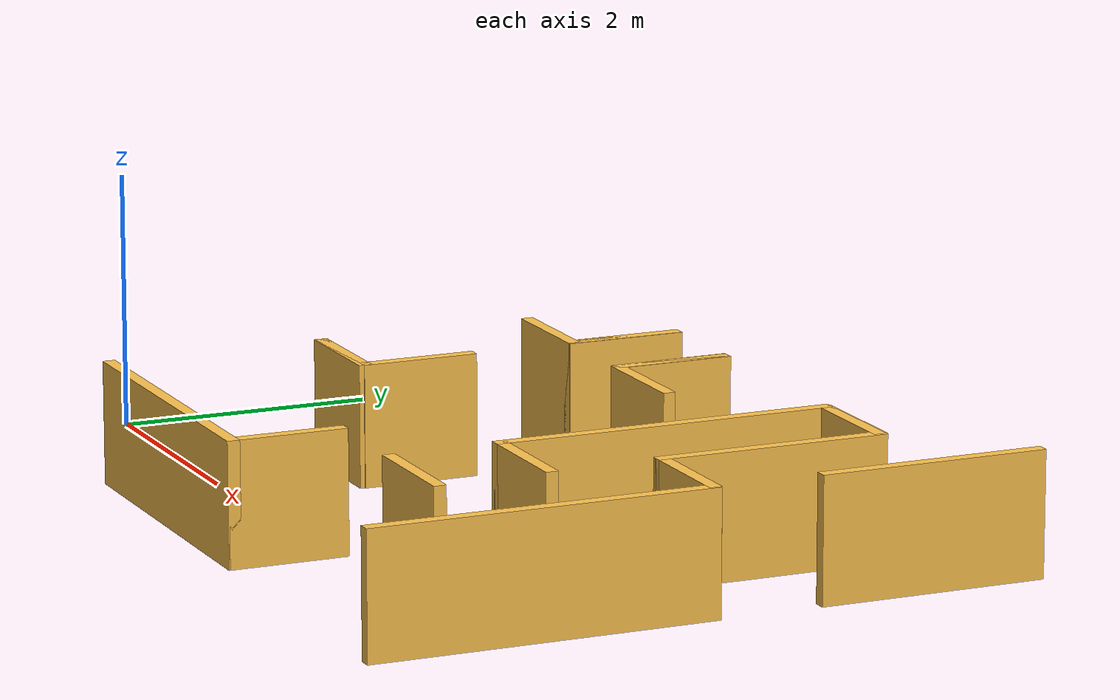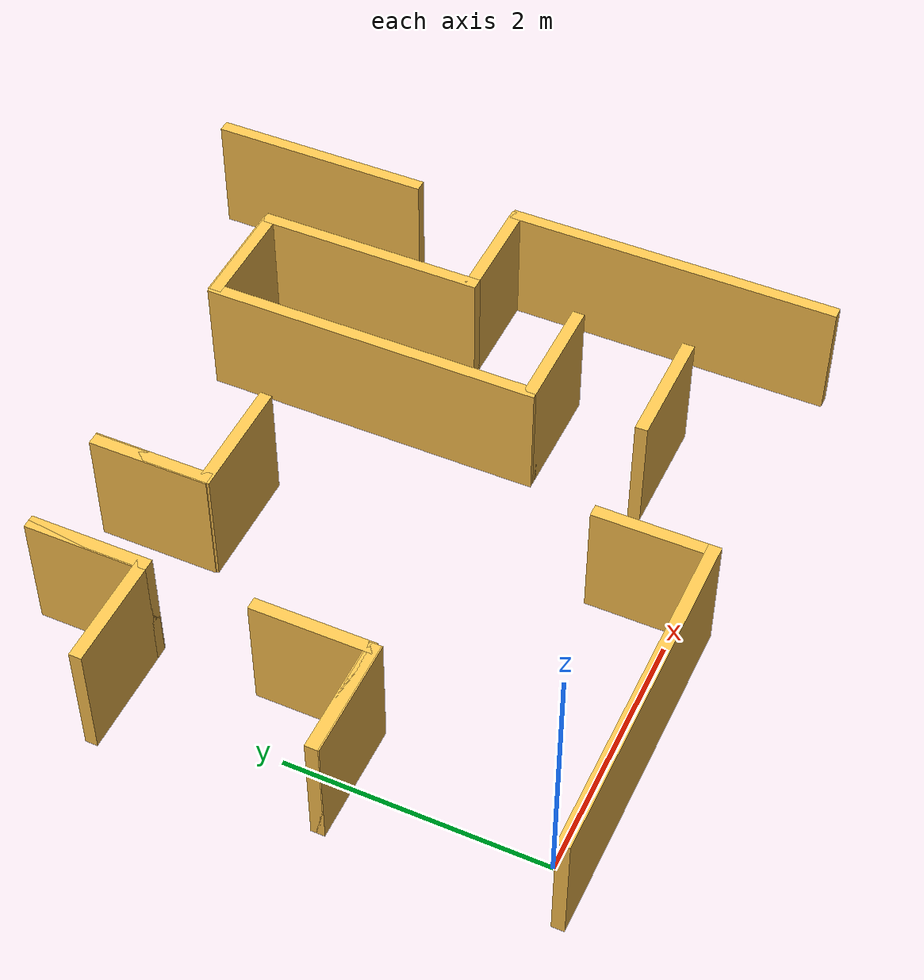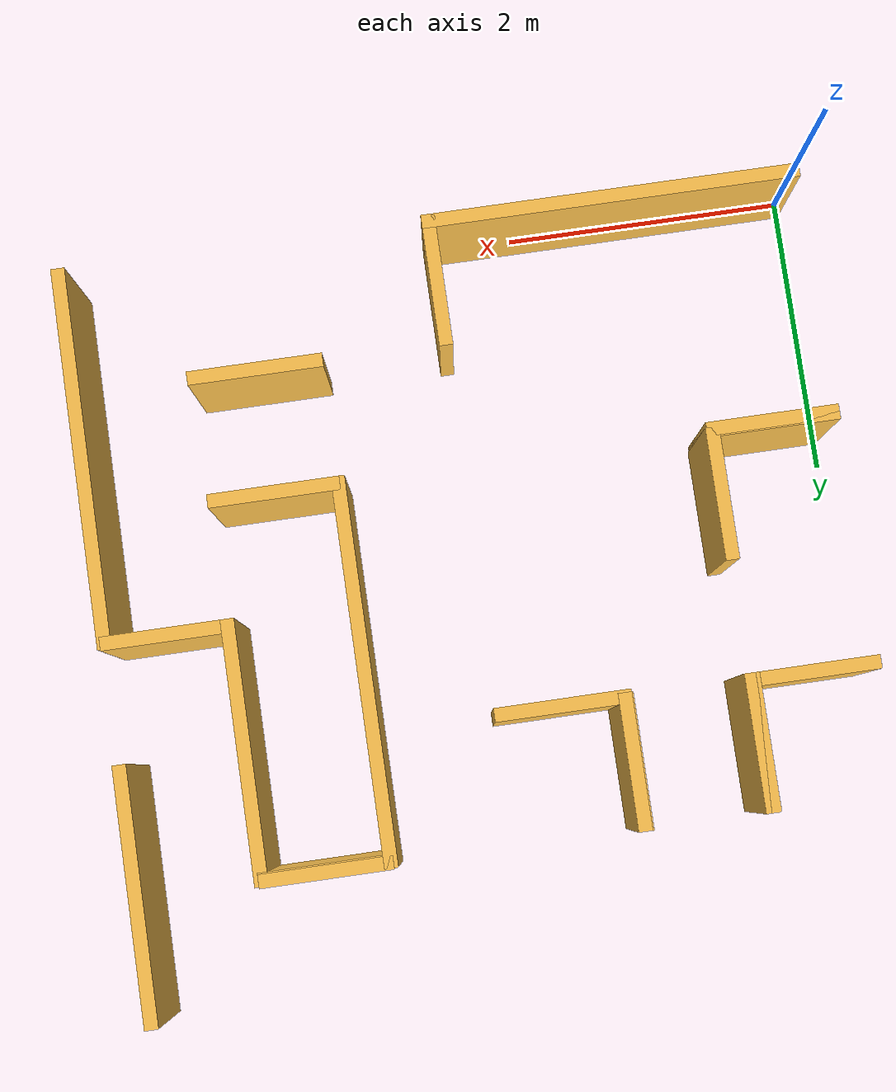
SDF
<sdf version="1.5">
 <model name="maze_test">
  <link name="Wall_19">
   <visual name="Wall_19_Visual">
    <pose>0.8 3.945 0 0 0 0</pose>
    <geometry><box><size>0.1 0.9900000000000001 1</size></box></geometry>
    <material>
     <script><uri>file://media/materials/scripts/gazebo.material</uri><name>Gazebo/Grey</name></script>
     <ambient>1 0.764706 0.305882 1</ambient>
     <diffuse>0.7 0.7 0.7 1</diffuse>
     <specular>0.01 0.01 0.01 1</specular>
     <emissive>0 0 0 1</emissive>
     <shader type="pixel"/>
    </material>
   </visual>
   <collision name="Wall_19_Collision">
    <pose>0.8 3.945 0 0 0 0</pose>
    <geometry><box><size>0.1 0.9900000000000001 1</size></box></geometry>
    <surface>
     <friction><ode><mu>1</mu><mu2>1</mu2><fdir1>0 0 0</fdir1><slip1>0</slip1><slip2>0</slip2></ode></friction>
     <bounce><restitution_coefficient>0</restitution_coefficient><threshold>1e+06</threshold></bounce>
     <contact>
      <collide_without_contact>0</collide_without_contact>
      <collide_without_contact_bitmask>1</collide_without_contact_bitmask>
      <collide_bitmask>1</collide_bitmask>
      <ode>
       <soft_cfm>0</soft_cfm>
       <soft_erp>0.2</soft_erp>
       <kp>1e+13</kp>
       <kd>1</kd>
       <max_vel>0.01</max_vel>
       <min_depth>0</min_depth>
      </ode>
      <bullet>
       <split_impulse>1</split_impulse>
       <split_impulse_penetration_threshold>-0.01</split_impulse_penetration_threshold>
       <soft_cfm>0</soft_cfm>
       <soft_erp>0.2</soft_erp>
       <kp>1e+13</kp>
       <kd>1</kd>
      </bullet>
     </contact>
    </surface>
   </collision>
  </link>
  <link name="Wall_20">
   <visual name="Wall_20_Visual">
    <pose>4.4 3.4949999999999997 0 0 0 0</pose>
    <geometry><box><size>0.1 1.8900000000000001 1</size></box></geometry>
    <material>
     <script><uri>file://media/materials/scripts/gazebo.material</uri><name>Gazebo/Grey</name></script>
     <ambient>1 0.764706 0.305882 1</ambient>
     <diffuse>0.7 0.7 0.7 1</diffuse>
     <specular>0.01 0.01 0.01 1</specular>
     <emissive>0 0 0 1</emissive>
     <shader type="pixel"/>
    </material>
   </visual>
   <collision name="Wall_20_Collision">
    <pose>4.4 3.4949999999999997 0 0 0 0</pose>
    <geometry><box><size>0.1 1.8900000000000001 1</size></box></geometry>
    <surface>
     <friction><ode><mu>1</mu><mu2>1</mu2><fdir1>0 0 0</fdir1><slip1>0</slip1><slip2>0</slip2></ode></friction>
     <bounce><restitution_coefficient>0</restitution_coefficient><threshold>1e+06</threshold></bounce>
     <contact>
      <collide_without_contact>0</collide_without_contact>
      <collide_without_contact_bitmask>1</collide_without_contact_bitmask>
      <collide_bitmask>1</collide_bitmask>
      <ode>
       <soft_cfm>0</soft_cfm>
       <soft_erp>0.2</soft_erp>
       <kp>1e+13</kp>
       <kd>1</kd>
       <max_vel>0.01</max_vel>
       <min_depth>0</min_depth>
      </ode>
      <bullet>
       <split_impulse>1</split_impulse>
       <split_impulse_penetration_threshold>-0.01</split_impulse_penetration_threshold>
       <soft_cfm>0</soft_cfm>
       <soft_erp>0.2</soft_erp>
       <kp>1e+13</kp>
       <kd>1</kd>
      </bullet>
     </contact>
    </surface>
   </collision>
  </link>
  <link name="Wall_21">
   <visual name="Wall_21_Visual">
    <pose>2.14 3.4899999999999998 0 0 0 0</pose>
    <geometry><box><size>0.9799999999999999 0.1 1</size></box></geometry>
    <material>
     <script><uri>file://media/materials/scripts/gazebo.material</uri><name>Gazebo/Grey</name></script>
     <ambient>1 0.764706 0.305882 1</ambient>
     <diffuse>0.7 0.7 0.7 1</diffuse>
     <specular>0.01 0.01 0.01 1</specular>
     <emissive>0 0 0 1</emissive>
     <shader type="pixel"/>
    </material>
   </visual>
   <collision name="Wall_21_Collision">
    <pose>2.14 3.4899999999999998 0 0 0 0</pose>
    <geometry><box><size>0.9799999999999999 0.1 1</size></box></geometry>
    <surface>
     <friction><ode><mu>1</mu><mu2>1</mu2><fdir1>0 0 0</fdir1><slip1>0</slip1><slip2>0</slip2></ode></friction>
     <bounce><restitution_coefficient>0</restitution_coefficient><threshold>1e+06</threshold></bounce>
     <contact>
      <collide_without_contact>0</collide_without_contact>
      <collide_without_contact_bitmask>1</collide_without_contact_bitmask>
      <collide_bitmask>1</collide_bitmask>
      <ode>
       <soft_cfm>0</soft_cfm>
       <soft_erp>0.2</soft_erp>
       <kp>1e+13</kp>
       <kd>1</kd>
       <max_vel>0.01</max_vel>
       <min_depth>0</min_depth>
      </ode>
      <bullet>
       <split_impulse>1</split_impulse>
       <split_impulse_penetration_threshold>-0.01</split_impulse_penetration_threshold>
       <soft_cfm>0</soft_cfm>
       <soft_erp>0.2</soft_erp>
       <kp>1e+13</kp>
       <kd>1</kd>
      </bullet>
     </contact>
    </surface>
   </collision>
  </link>
  <link name="Wall_22">
   <visual name="Wall_22_Visual">
    <pose>0.79 3.945 0 0 0 0</pose>
    <geometry><box><size>0.1 0.9900000000000001 1</size></box></geometry>
    <material>
     <script><uri>file://media/materials/scripts/gazebo.material</uri><name>Gazebo/Grey</name></script>
     <ambient>1 0.764706 0.305882 1</ambient>
     <diffuse>0.7 0.7 0.7 1</diffuse>
     <specular>0.01 0.01 0.01 1</specular>
     <emissive>0 0 0 1</emissive>
     <shader type="pixel"/>
    </material>
   </visual>
   <collision name="Wall_22_Collision">
    <pose>0.79 3.945 0 0 0 0</pose>
    <geometry><box><size>0.1 0.9900000000000001 1</size></box></geometry>
    <surface>
     <friction><ode><mu>1</mu><mu2>1</mu2><fdir1>0 0 0</fdir1><slip1>0</slip1><slip2>0</slip2></ode></friction>
     <bounce><restitution_coefficient>0</restitution_coefficient><threshold>1e+06</threshold></bounce>
     <contact>
      <collide_without_contact>0</collide_without_contact>
      <collide_without_contact_bitmask>1</collide_without_contact_bitmask>
      <collide_bitmask>1</collide_bitmask>
      <ode>
       <soft_cfm>0</soft_cfm>
       <soft_erp>0.2</soft_erp>
       <kp>1e+13</kp>
       <kd>1</kd>
       <max_vel>0.01</max_vel>
       <min_depth>0</min_depth>
      </ode>
      <bullet>
       <split_impulse>1</split_impulse>
       <split_impulse_penetration_threshold>-0.01</split_impulse_penetration_threshold>
       <soft_cfm>0</soft_cfm>
       <soft_erp>0.2</soft_erp>
       <kp>1e+13</kp>
       <kd>1</kd>
      </bullet>
     </contact>
    </surface>
   </collision>
  </link>
  <link name="Wall_23">
   <visual name="Wall_23_Visual">
    <pose>0.35 3.5 0 0 0 0</pose>
    <geometry><box><size>0.94 0.1 1</size></box></geometry>
    <material>
     <script><uri>file://media/materials/scripts/gazebo.material</uri><name>Gazebo/Grey</name></script>
     <ambient>1 0.764706 0.305882 1</ambient>
     <diffuse>0.7 0.7 0.7 1</diffuse>
     <specular>0.01 0.01 0.01 1</specular>
     <emissive>0 0 0 1</emissive>
     <shader type="pixel"/>
    </material>
   </visual>
   <collision name="Wall_23_Collision">
    <pose>0.35 3.5 0 0 0 0</pose>
    <geometry><box><size>0.94 0.1 1</size></box></geometry>
    <surface>
     <friction><ode><mu>1</mu><mu2>1</mu2><fdir1>0 0 0</fdir1><slip1>0</slip1><slip2>0</slip2></ode></friction>
     <bounce><restitution_coefficient>0</restitution_coefficient><threshold>1e+06</threshold></bounce>
     <contact>
      <collide_without_contact>0</collide_without_contact>
      <collide_without_contact_bitmask>1</collide_without_contact_bitmask>
      <collide_bitmask>1</collide_bitmask>
      <ode>
       <soft_cfm>0</soft_cfm>
       <soft_erp>0.2</soft_erp>
       <kp>1e+13</kp>
       <kd>1</kd>
       <max_vel>0.01</max_vel>
       <min_depth>0</min_depth>
      </ode>
      <bullet>
       <split_impulse>1</split_impulse>
       <split_impulse_penetration_threshold>-0.01</split_impulse_penetration_threshold>
       <soft_cfm>0</soft_cfm>
       <soft_erp>0.2</soft_erp>
       <kp>1e+13</kp>
       <kd>1</kd>
      </bullet>
     </contact>
    </surface>
   </collision>
  </link>
  <link name="Wall_24">
   <visual name="Wall_24_Visual">
    <pose>3.4899999999999998 3.045 0 0 0 0</pose>
    <geometry><box><size>0.1 2.79 1</size></box></geometry>
    <material>
     <script><uri>file://media/materials/scripts/gazebo.material</uri><name>Gazebo/Grey</name></script>
     <ambient>1 0.764706 0.305882 1</ambient>
     <diffuse>0.7 0.7 0.7 1</diffuse>
     <specular>0.01 0.01 0.01 1</specular>
     <emissive>0 0 0 1</emissive>
     <shader type="pixel"/>
    </material>
   </visual>
   <collision name="Wall_24_Collision">
    <pose>3.4899999999999998 3.045 0 0 0 0</pose>
    <geometry><box><size>0.1 2.79 1</size></box></geometry>
    <surface>
     <friction><ode><mu>1</mu><mu2>1</mu2><fdir1>0 0 0</fdir1><slip1>0</slip1><slip2>0</slip2></ode></friction>
     <bounce><restitution_coefficient>0</restitution_coefficient><threshold>1e+06</threshold></bounce>
     <contact>
      <collide_without_contact>0</collide_without_contact>
      <collide_without_contact_bitmask>1</collide_without_contact_bitmask>
      <collide_bitmask>1</collide_bitmask>
      <ode>
       <soft_cfm>0</soft_cfm>
       <soft_erp>0.2</soft_erp>
       <kp>1e+13</kp>
       <kd>1</kd>
       <max_vel>0.01</max_vel>
       <min_depth>0</min_depth>
      </ode>
      <bullet>
       <split_impulse>1</split_impulse>
       <split_impulse_penetration_threshold>-0.01</split_impulse_penetration_threshold>
       <soft_cfm>0</soft_cfm>
       <soft_erp>0.2</soft_erp>
       <kp>1e+13</kp>
       <kd>1</kd>
      </bullet>
     </contact>
    </surface>
   </collision>
  </link>
  <link name="Wall_25">
   <visual name="Wall_25_Visual">
    <pose>2.59 0.33999999999999997 0 0 0 0</pose>
    <geometry><box><size>0.1 0.96 1</size></box></geometry>
    <material>
     <script><uri>file://media/materials/scripts/gazebo.material</uri><name>Gazebo/Grey</name></script>
     <ambient>1 0.764706 0.305882 1</ambient>
     <diffuse>0.7 0.7 0.7 1</diffuse>
     <specular>0.01 0.01 0.01 1</specular>
     <emissive>0 0 0 1</emissive>
     <shader type="pixel"/>
    </material>
   </visual>
   <collision name="Wall_25_Collision">
    <pose>2.59 0.33999999999999997 0 0 0 0</pose>
    <geometry><box><size>0.1 0.96 1</size></box></geometry>
    <surface>
     <friction><ode><mu>1</mu><mu2>1</mu2><fdir1>0 0 0</fdir1><slip1>0</slip1><slip2>0</slip2></ode></friction>
     <bounce><restitution_coefficient>0</restitution_coefficient><threshold>1e+06</threshold></bounce>
     <contact>
      <collide_without_contact>0</collide_without_contact>
      <collide_without_contact_bitmask>1</collide_without_contact_bitmask>
      <collide_bitmask>1</collide_bitmask>
      <ode>
       <soft_cfm>0</soft_cfm>
       <soft_erp>0.2</soft_erp>
       <kp>1e+13</kp>
       <kd>1</kd>
       <max_vel>0.01</max_vel>
       <min_depth>0</min_depth>
      </ode>
      <bullet>
       <split_impulse>1</split_impulse>
       <split_impulse_penetration_threshold>-0.01</split_impulse_penetration_threshold>
       <soft_cfm>0</soft_cfm>
       <soft_erp>0.2</soft_erp>
       <kp>1e+13</kp>
       <kd>1</kd>
      </bullet>
     </contact>
    </surface>
   </collision>
  </link>
  <link name="Wall_26">
   <visual name="Wall_26_Visual">
    <pose>0.36 1.7 0 0 0 0</pose>
    <geometry><box><size>0.96 0.1 1</size></box></geometry>
    <material>
     <script><uri>file://media/materials/scripts/gazebo.material</uri><name>Gazebo/Grey</name></script>
     <ambient>1 0.764706 0.305882 1</ambient>
     <diffuse>0.7 0.7 0.7 1</diffuse>
     <specular>0.01 0.01 0.01 1</specular>
     <emissive>0 0 0 1</emissive>
     <shader type="pixel"/>
    </material>
   </visual>
   <collision name="Wall_26_Collision">
    <pose>0.36 1.7 0 0 0 0</pose>
    <geometry><box><size>0.96 0.1 1</size></box></geometry>
    <surface>
     <friction><ode><mu>1</mu><mu2>1</mu2><fdir1>0 0 0</fdir1><slip1>0</slip1><slip2>0</slip2></ode></friction>
     <bounce><restitution_coefficient>0</restitution_coefficient><threshold>1e+06</threshold></bounce>
     <contact>
      <collide_without_contact>0</collide_without_contact>
      <collide_without_contact_bitmask>1</collide_without_contact_bitmask>
      <collide_bitmask>1</collide_bitmask>
      <ode>
       <soft_cfm>0</soft_cfm>
       <soft_erp>0.2</soft_erp>
       <kp>1e+13</kp>
       <kd>1</kd>
       <max_vel>0.01</max_vel>
       <min_depth>0</min_depth>
      </ode>
      <bullet>
       <split_impulse>1</split_impulse>
       <split_impulse_penetration_threshold>-0.01</split_impulse_penetration_threshold>
       <soft_cfm>0</soft_cfm>
       <soft_erp>0.2</soft_erp>
       <kp>1e+13</kp>
       <kd>1</kd>
      </bullet>
     </contact>
    </surface>
   </collision>
  </link>
  <link name="Wall_27">
   <visual name="Wall_27_Visual">
    <pose>5.28 1.2550000000000001 0 0 0 0</pose>
    <geometry><box><size>0.1 2.7700000000000005 1</size></box></geometry>
    <material>
     <script><uri>file://media/materials/scripts/gazebo.material</uri><name>Gazebo/Grey</name></script>
     <ambient>1 0.764706 0.305882 1</ambient>
     <diffuse>0.7 0.7 0.7 1</diffuse>
     <specular>0.01 0.01 0.01 1</specular>
     <emissive>0 0 0 1</emissive>
     <shader type="pixel"/>
    </material>
   </visual>
   <collision name="Wall_27_Collision">
    <pose>5.28 1.2550000000000001 0 0 0 0</pose>
    <geometry><box><size>0.1 2.7700000000000005 1</size></box></geometry>
    <surface>
     <friction><ode><mu>1</mu><mu2>1</mu2><fdir1>0 0 0</fdir1><slip1>0</slip1><slip2>0</slip2></ode></friction>
     <bounce><restitution_coefficient>0</restitution_coefficient><threshold>1e+06</threshold></bounce>
     <contact>
      <collide_without_contact>0</collide_without_contact>
      <collide_without_contact_bitmask>1</collide_without_contact_bitmask>
      <collide_bitmask>1</collide_bitmask>
      <ode>
       <soft_cfm>0</soft_cfm>
       <soft_erp>0.2</soft_erp>
       <kp>1e+13</kp>
       <kd>1</kd>
       <max_vel>0.01</max_vel>
       <min_depth>0</min_depth>
      </ode>
      <bullet>
       <split_impulse>1</split_impulse>
       <split_impulse_penetration_threshold>-0.01</split_impulse_penetration_threshold>
       <soft_cfm>0</soft_cfm>
       <soft_erp>0.2</soft_erp>
       <kp>1e+13</kp>
       <kd>1</kd>
      </bullet>
     </contact>
    </surface>
   </collision>
  </link>
  <link name="Wall_28">
   <visual name="Wall_28_Visual">
    <pose>0.36 1.69 0 0 0 0</pose>
    <geometry><box><size>0.96 0.1 1</size></box></geometry>
    <material>
     <script><uri>file://media/materials/scripts/gazebo.material</uri><name>Gazebo/Grey</name></script>
     <ambient>1 0.764706 0.305882 1</ambient>
     <diffuse>0.7 0.7 0.7 1</diffuse>
     <specular>0.01 0.01 0.01 1</specular>
     <emissive>0 0 0 1</emissive>
     <shader type="pixel"/>
    </material>
   </visual>
   <collision name="Wall_28_Collision">
    <pose>0.36 1.69 0 0 0 0</pose>
    <geometry><box><size>0.96 0.1 1</size></box></geometry>
    <surface>
     <friction><ode><mu>1</mu><mu2>1</mu2><fdir1>0 0 0</fdir1><slip1>0</slip1><slip2>0</slip2></ode></friction>
     <bounce><restitution_coefficient>0</restitution_coefficient><threshold>1e+06</threshold></bounce>
     <contact>
      <collide_without_contact>0</collide_without_contact>
      <collide_without_contact_bitmask>1</collide_without_contact_bitmask>
      <collide_bitmask>1</collide_bitmask>
      <ode>
       <soft_cfm>0</soft_cfm>
       <soft_erp>0.2</soft_erp>
       <kp>1e+13</kp>
       <kd>1</kd>
       <max_vel>0.01</max_vel>
       <min_depth>0</min_depth>
      </ode>
      <bullet>
       <split_impulse>1</split_impulse>
       <split_impulse_penetration_threshold>-0.01</split_impulse_penetration_threshold>
       <soft_cfm>0</soft_cfm>
       <soft_erp>0.2</soft_erp>
       <kp>1e+13</kp>
       <kd>1</kd>
      </bullet>
     </contact>
    </surface>
   </collision>
  </link>
  <link name="Wall_29">
   <visual name="Wall_29_Visual">
    <pose>1.26 -0.1 0 0 0 0</pose>
    <geometry><box><size>2.7600000000000002 0.1 1</size></box></geometry>
    <material>
     <script><uri>file://media/materials/scripts/gazebo.material</uri><name>Gazebo/Grey</name></script>
     <ambient>1 0.764706 0.305882 1</ambient>
     <diffuse>0.7 0.7 0.7 1</diffuse>
     <specular>0.01 0.01 0.01 1</specular>
     <emissive>0 0 0 1</emissive>
     <shader type="pixel"/>
    </material>
   </visual>
   <collision name="Wall_29_Collision">
    <pose>1.26 -0.1 0 0 0 0</pose>
    <geometry><box><size>2.7600000000000002 0.1 1</size></box></geometry>
    <surface>
     <friction><ode><mu>1</mu><mu2>1</mu2><fdir1>0 0 0</fdir1><slip1>0</slip1><slip2>0</slip2></ode></friction>
     <bounce><restitution_coefficient>0</restitution_coefficient><threshold>1e+06</threshold></bounce>
     <contact>
      <collide_without_contact>0</collide_without_contact>
      <collide_without_contact_bitmask>1</collide_without_contact_bitmask>
      <collide_bitmask>1</collide_bitmask>
      <ode>
       <soft_cfm>0</soft_cfm>
       <soft_erp>0.2</soft_erp>
       <kp>1e+13</kp>
       <kd>1</kd>
       <max_vel>0.01</max_vel>
       <min_depth>0</min_depth>
      </ode>
      <bullet>
       <split_impulse>1</split_impulse>
       <split_impulse_penetration_threshold>-0.01</split_impulse_penetration_threshold>
       <soft_cfm>0</soft_cfm>
       <soft_erp>0.2</soft_erp>
       <kp>1e+13</kp>
       <kd>1</kd>
      </bullet>
     </contact>
    </surface>
   </collision>
  </link>
  <link name="Wall_30">
   <visual name="Wall_30_Visual">
    <pose>1.7 3.9499999999999997 0 0 0 0</pose>
    <geometry><box><size>0.1 0.9799999999999999 1</size></box></geometry>
    <material>
     <script><uri>file://media/materials/scripts/gazebo.material</uri><name>Gazebo/Grey</name></script>
     <ambient>1 0.764706 0.305882 1</ambient>
     <diffuse>0.7 0.7 0.7 1</diffuse>
     <specular>0.01 0.01 0.01 1</specular>
     <emissive>0 0 0 1</emissive>
     <shader type="pixel"/>
    </material>
   </visual>
   <collision name="Wall_30_Collision">
    <pose>1.7 3.9499999999999997 0 0 0 0</pose>
    <geometry><box><size>0.1 0.9799999999999999 1</size></box></geometry>
    <surface>
     <friction><ode><mu>1</mu><mu2>1</mu2><fdir1>0 0 0</fdir1><slip1>0</slip1><slip2>0</slip2></ode></friction>
     <bounce><restitution_coefficient>0</restitution_coefficient><threshold>1e+06</threshold></bounce>
     <contact>
      <collide_without_contact>0</collide_without_contact>
      <collide_without_contact_bitmask>1</collide_without_contact_bitmask>
      <collide_bitmask>1</collide_bitmask>
      <ode>
       <soft_cfm>0</soft_cfm>
       <soft_erp>0.2</soft_erp>
       <kp>1e+13</kp>
       <kd>1</kd>
       <max_vel>0.01</max_vel>
       <min_depth>0</min_depth>
      </ode>
      <bullet>
       <split_impulse>1</split_impulse>
       <split_impulse_penetration_threshold>-0.01</split_impulse_penetration_threshold>
       <soft_cfm>0</soft_cfm>
       <soft_erp>0.2</soft_erp>
       <kp>1e+13</kp>
       <kd>1</kd>
      </bullet>
     </contact>
    </surface>
   </collision>
  </link>
  <link name="Wall_31">
   <visual name="Wall_31_Visual">
    <pose>3.945 4.390000000000001 0 0 0 0</pose>
    <geometry><box><size>0.9500000000000005 0.1 1</size></box></geometry>
    <material>
     <script><uri>file://media/materials/scripts/gazebo.material</uri><name>Gazebo/Grey</name></script>
     <ambient>1 0.764706 0.305882 1</ambient>
     <diffuse>0.7 0.7 0.7 1</diffuse>
     <specular>0.01 0.01 0.01 1</specular>
     <emissive>0 0 0 1</emissive>
     <shader type="pixel"/>
    </material>
   </visual>
   <collision name="Wall_31_Collision">
    <pose>3.945 4.390000000000001 0 0 0 0</pose>
    <geometry><box><size>0.9500000000000005 0.1 1</size></box></geometry>
    <surface>
     <friction><ode><mu>1</mu><mu2>1</mu2><fdir1>0 0 0</fdir1><slip1>0</slip1><slip2>0</slip2></ode></friction>
     <bounce><restitution_coefficient>0</restitution_coefficient><threshold>1e+06</threshold></bounce>
     <contact>
      <collide_without_contact>0</collide_without_contact>
      <collide_without_contact_bitmask>1</collide_without_contact_bitmask>
      <collide_bitmask>1</collide_bitmask>
      <ode>
       <soft_cfm>0</soft_cfm>
       <soft_erp>0.2</soft_erp>
       <kp>1e+13</kp>
       <kd>1</kd>
       <max_vel>0.01</max_vel>
       <min_depth>0</min_depth>
      </ode>
      <bullet>
       <split_impulse>1</split_impulse>
       <split_impulse_penetration_threshold>-0.01</split_impulse_penetration_threshold>
       <soft_cfm>0</soft_cfm>
       <soft_erp>0.2</soft_erp>
       <kp>1e+13</kp>
       <kd>1</kd>
      </bullet>
     </contact>
    </surface>
   </collision>
  </link>
  <link name="Wall_33">
   <visual name="Wall_33_Visual">
    <pose>3.945 4.4 0 0 0 0</pose>
    <geometry><box><size>0.9500000000000005 0.1 1</size></box></geometry>
    <material>
     <script><uri>file://media/materials/scripts/gazebo.material</uri><name>Gazebo/Grey</name></script>
     <ambient>1 0.764706 0.305882 1</ambient>
     <diffuse>0.7 0.7 0.7 1</diffuse>
     <specular>0.01 0.01 0.01 1</specular>
     <emissive>0 0 0 1</emissive>
     <shader type="pixel"/>
    </material>
   </visual>
   <collision name="Wall_33_Collision">
    <pose>3.945 4.4 0 0 0 0</pose>
    <geometry><box><size>0.9500000000000005 0.1 1</size></box></geometry>
    <surface>
     <friction><ode><mu>1</mu><mu2>1</mu2><fdir1>0 0 0</fdir1><slip1>0</slip1><slip2>0</slip2></ode></friction>
     <bounce><restitution_coefficient>0</restitution_coefficient><threshold>1e+06</threshold></bounce>
     <contact>
      <collide_without_contact>0</collide_without_contact>
      <collide_without_contact_bitmask>1</collide_without_contact_bitmask>
      <collide_bitmask>1</collide_bitmask>
      <ode>
       <soft_cfm>0</soft_cfm>
       <soft_erp>0.2</soft_erp>
       <kp>1e+13</kp>
       <kd>1</kd>
       <max_vel>0.01</max_vel>
       <min_depth>0</min_depth>
      </ode>
      <bullet>
       <split_impulse>1</split_impulse>
       <split_impulse_penetration_threshold>-0.01</split_impulse_penetration_threshold>
       <soft_cfm>0</soft_cfm>
       <soft_erp>0.2</soft_erp>
       <kp>1e+13</kp>
       <kd>1</kd>
      </bullet>
     </contact>
    </surface>
   </collision>
  </link>
  <link name="Wall_34">
   <visual name="Wall_34_Visual">
    <pose>1.69 3.9499999999999997 0 0 0 0</pose>
    <geometry><box><size>0.1 0.9799999999999999 1</size></box></geometry>
    <material>
     <script><uri>file://media/materials/scripts/gazebo.material</uri><name>Gazebo/Grey</name></script>
     <ambient>1 0.764706 0.305882 1</ambient>
     <diffuse>0.7 0.7 0.7 1</diffuse>
     <specular>0.01 0.01 0.01 1</specular>
     <emissive>0 0 0 1</emissive>
     <shader type="pixel"/>
    </material>
   </visual>
   <collision name="Wall_34_Collision">
    <pose>1.69 3.9499999999999997 0 0 0 0</pose>
    <geometry><box><size>0.1 0.9799999999999999 1</size></box></geometry>
    <surface>
     <friction><ode><mu>1</mu><mu2>1</mu2><fdir1>0 0 0</fdir1><slip1>0</slip1><slip2>0</slip2></ode></friction>
     <bounce><restitution_coefficient>0</restitution_coefficient><threshold>1e+06</threshold></bounce>
     <contact>
      <collide_without_contact>0</collide_without_contact>
      <collide_without_contact_bitmask>1</collide_without_contact_bitmask>
      <collide_bitmask>1</collide_bitmask>
      <ode>
       <soft_cfm>0</soft_cfm>
       <soft_erp>0.2</soft_erp>
       <kp>1e+13</kp>
       <kd>1</kd>
       <max_vel>0.01</max_vel>
       <min_depth>0</min_depth>
      </ode>
      <bullet>
       <split_impulse>1</split_impulse>
       <split_impulse_penetration_threshold>-0.01</split_impulse_penetration_threshold>
       <soft_cfm>0</soft_cfm>
       <soft_erp>0.2</soft_erp>
       <kp>1e+13</kp>
       <kd>1</kd>
      </bullet>
     </contact>
    </surface>
   </collision>
  </link>
  <link name="Wall_35">
   <visual name="Wall_35_Visual">
    <pose>3.9549999999999996 1.7 0 0 0 0</pose>
    <geometry><box><size>0.9500000000000001 0.1 1</size></box></geometry>
    <material>
     <script><uri>file://media/materials/scripts/gazebo.material</uri><name>Gazebo/Grey</name></script>
     <ambient>1 0.764706 0.305882 1</ambient>
     <diffuse>0.7 0.7 0.7 1</diffuse>
     <specular>0.01 0.01 0.01 1</specular>
     <emissive>0 0 0 1</emissive>
     <shader type="pixel"/>
    </material>
   </visual>
   <collision name="Wall_35_Collision">
    <pose>3.9549999999999996 1.7 0 0 0 0</pose>
    <geometry><box><size>0.9500000000000001 0.1 1</size></box></geometry>
    <surface>
     <friction><ode><mu>1</mu><mu2>1</mu2><fdir1>0 0 0</fdir1><slip1>0</slip1><slip2>0</slip2></ode></friction>
     <bounce><restitution_coefficient>0</restitution_coefficient><threshold>1e+06</threshold></bounce>
     <contact>
      <collide_without_contact>0</collide_without_contact>
      <collide_without_contact_bitmask>1</collide_without_contact_bitmask>
      <collide_bitmask>1</collide_bitmask>
      <ode>
       <soft_cfm>0</soft_cfm>
       <soft_erp>0.2</soft_erp>
       <kp>1e+13</kp>
       <kd>1</kd>
       <max_vel>0.01</max_vel>
       <min_depth>0</min_depth>
      </ode>
      <bullet>
       <split_impulse>1</split_impulse>
       <split_impulse_penetration_threshold>-0.01</split_impulse_penetration_threshold>
       <soft_cfm>0</soft_cfm>
       <soft_erp>0.2</soft_erp>
       <kp>1e+13</kp>
       <kd>1</kd>
      </bullet>
     </contact>
    </surface>
   </collision>
  </link>
  <link name="Wall_36">
   <visual name="Wall_36_Visual">
    <pose>3.97 0.8 0 0 0 0</pose>
    <geometry><box><size>0.9799999999999994 0.1 1</size></box></geometry>
    <material>
     <script><uri>file://media/materials/scripts/gazebo.material</uri><name>Gazebo/Grey</name></script>
     <ambient>1 0.764706 0.305882 1</ambient>
     <diffuse>0.7 0.7 0.7 1</diffuse>
     <specular>0.01 0.01 0.01 1</specular>
     <emissive>0 0 0 1</emissive>
     <shader type="pixel"/>
    </material>
   </visual>
   <collision name="Wall_36_Collision">
    <pose>3.97 0.8 0 0 0 0</pose>
    <geometry><box><size>0.9799999999999994 0.1 1</size></box></geometry>
    <surface>
     <friction><ode><mu>1</mu><mu2>1</mu2><fdir1>0 0 0</fdir1><slip1>0</slip1><slip2>0</slip2></ode></friction>
     <bounce><restitution_coefficient>0</restitution_coefficient><threshold>1e+06</threshold></bounce>
     <contact>
      <collide_without_contact>0</collide_without_contact>
      <collide_without_contact_bitmask>1</collide_without_contact_bitmask>
      <collide_bitmask>1</collide_bitmask>
      <ode>
       <soft_cfm>0</soft_cfm>
       <soft_erp>0.2</soft_erp>
       <kp>1e+13</kp>
       <kd>1</kd>
       <max_vel>0.01</max_vel>
       <min_depth>0</min_depth>
      </ode>
      <bullet>
       <split_impulse>1</split_impulse>
       <split_impulse_penetration_threshold>-0.01</split_impulse_penetration_threshold>
       <soft_cfm>0</soft_cfm>
       <soft_erp>0.2</soft_erp>
       <kp>1e+13</kp>
       <kd>1</kd>
      </bullet>
     </contact>
    </surface>
   </collision>
  </link>
  <link name="Wall_37">
   <visual name="Wall_37_Visual">
    <pose>4.845000000000001 2.6 0 0 0 0</pose>
    <geometry><box><size>0.9300000000000005 0.1 1</size></box></geometry>
    <material>
     <script><uri>file://media/materials/scripts/gazebo.material</uri><name>Gazebo/Grey</name></script>
     <ambient>1 0.764706 0.305882 1</ambient>
     <diffuse>0.7 0.7 0.7 1</diffuse>
     <specular>0.01 0.01 0.01 1</specular>
     <emissive>0 0 0 1</emissive>
     <shader type="pixel"/>
    </material>
   </visual>
   <collision name="Wall_37_Collision">
    <pose>4.845000000000001 2.6 0 0 0 0</pose>
    <geometry><box><size>0.9300000000000005 0.1 1</size></box></geometry>
    <surface>
     <friction><ode><mu>1</mu><mu2>1</mu2><fdir1>0 0 0</fdir1><slip1>0</slip1><slip2>0</slip2></ode></friction>
     <bounce><restitution_coefficient>0</restitution_coefficient><threshold>1e+06</threshold></bounce>
     <contact>
      <collide_without_contact>0</collide_without_contact>
      <collide_without_contact_bitmask>1</collide_without_contact_bitmask>
      <collide_bitmask>1</collide_bitmask>
      <ode>
       <soft_cfm>0</soft_cfm>
       <soft_erp>0.2</soft_erp>
       <kp>1e+13</kp>
       <kd>1</kd>
       <max_vel>0.01</max_vel>
       <min_depth>0</min_depth>
      </ode>
      <bullet>
       <split_impulse>1</split_impulse>
       <split_impulse_penetration_threshold>-0.01</split_impulse_penetration_threshold>
       <soft_cfm>0</soft_cfm>
       <soft_erp>0.2</soft_erp>
       <kp>1e+13</kp>
       <kd>1</kd>
      </bullet>
     </contact>
    </surface>
   </collision>
  </link>
  <link name="Wall_38">
   <visual name="Wall_38_Visual">
    <pose>5.28 4.380000000000001 0 0 0 0</pose>
    <geometry><box><size>0.1 1.8400000000000003 1</size></box></geometry>
    <material>
     <script><uri>file://media/materials/scripts/gazebo.material</uri><name>Gazebo/Grey</name></script>
     <ambient>1 0.764706 0.305882 1</ambient>
     <diffuse>0.7 0.7 0.7 1</diffuse>
     <specular>0.01 0.01 0.01 1</specular>
     <emissive>0 0 0 1</emissive>
     <shader type="pixel"/>
    </material>
   </visual>
   <collision name="Wall_38_Collision">
    <pose>5.28 4.380000000000001 0 0 0 0</pose>
    <geometry><box><size>0.1 1.8400000000000003 1</size></box></geometry>
    <surface>
     <friction><ode><mu>1</mu><mu2>1</mu2><fdir1>0 0 0</fdir1><slip1>0</slip1><slip2>0</slip2></ode></friction>
     <bounce><restitution_coefficient>0</restitution_coefficient><threshold>1e+06</threshold></bounce>
     <contact>
      <collide_without_contact>0</collide_without_contact>
      <collide_without_contact_bitmask>1</collide_without_contact_bitmask>
      <collide_bitmask>1</collide_bitmask>
      <ode>
       <soft_cfm>0</soft_cfm>
       <soft_erp>0.2</soft_erp>
       <kp>1e+13</kp>
       <kd>1</kd>
       <max_vel>0.01</max_vel>
       <min_depth>0</min_depth>
      </ode>
      <bullet>
       <split_impulse>1</split_impulse>
       <split_impulse_penetration_threshold>-0.01</split_impulse_penetration_threshold>
       <soft_cfm>0</soft_cfm>
       <soft_erp>0.2</soft_erp>
       <kp>1e+13</kp>
       <kd>1</kd>
      </bullet>
     </contact>
    </surface>
   </collision>
  </link>
  <link name="Wall_39">
   <visual name="Wall_39_Visual">
    <pose>0.8 2.16 0 0 0 0</pose>
    <geometry><box><size>0.1 0.9600000000000001 1</size></box></geometry>
    <material>
     <script><uri>file://media/materials/scripts/gazebo.material</uri><name>Gazebo/Grey</name></script>
     <ambient>1 0.764706 0.305882 1</ambient>
     <diffuse>0.7 0.7 0.7 1</diffuse>
     <specular>0.01 0.01 0.01 1</specular>
     <emissive>0 0 0 1</emissive>
     <shader type="pixel"/>
    </material>
   </visual>
   <collision name="Wall_39_Collision">
    <pose>0.8 2.16 0 0 0 0</pose>
    <geometry><box><size>0.1 0.9600000000000001 1</size></box></geometry>
    <surface>
     <friction><ode><mu>1</mu><mu2>1</mu2><fdir1>0 0 0</fdir1><slip1>0</slip1><slip2>0</slip2></ode></friction>
     <bounce><restitution_coefficient>0</restitution_coefficient><threshold>1e+06</threshold></bounce>
     <contact>
      <collide_without_contact>0</collide_without_contact>
      <collide_without_contact_bitmask>1</collide_without_contact_bitmask>
      <collide_bitmask>1</collide_bitmask>
      <ode>
       <soft_cfm>0</soft_cfm>
       <soft_erp>0.2</soft_erp>
       <kp>1e+13</kp>
       <kd>1</kd>
       <max_vel>0.01</max_vel>
       <min_depth>0</min_depth>
      </ode>
      <bullet>
       <split_impulse>1</split_impulse>
       <split_impulse_penetration_threshold>-0.01</split_impulse_penetration_threshold>
       <soft_cfm>0</soft_cfm>
       <soft_erp>0.2</soft_erp>
       <kp>1e+13</kp>
       <kd>1</kd>
      </bullet>
     </contact>
    </surface>
   </collision>
  </link>
  <static>1</static>
 </model>
</sdf>
